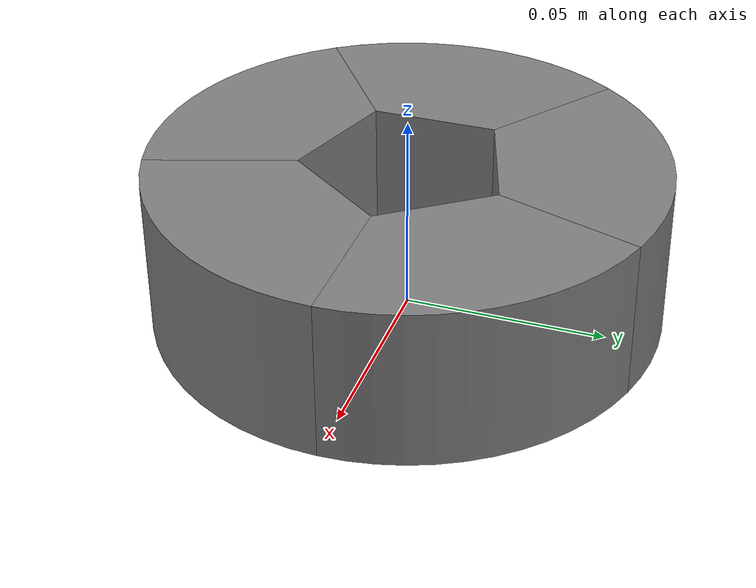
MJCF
<mujoco model="hole">
  <compiler angle="radian"/>
  <default>
    <default class="visual">
      <geom group="0" type="mesh" contype="0" conaffinity="0"/>
    </default>
  </default>
  <asset>
    <texture file="../textures/red-wood.png" type="cube" name="red-wood" />
    <material name="plate_mat" texture="red-wood" texrepeat="3 3" specular="0.4" shininess="0.1" />
    <mesh file="pentagon-hole/round_pentagon_hole_0.obj" name="round_pentagon_hole_0"/>
    <mesh file="pentagon-hole/round_pentagon_hole_1.obj" name="round_pentagon_hole_1"/>
    <mesh file="pentagon-hole/round_pentagon_hole_2.obj" name="round_pentagon_hole_2"/>
    <mesh file="pentagon-hole/round_pentagon_hole_3.obj" name="round_pentagon_hole_3"/>
    <mesh file="pentagon-hole/round_pentagon_hole_4.obj" name="round_pentagon_hole_4"/>

    <mesh file="pentagon-hole/pentagon_hole_0.obj" name="pentagon_hole_0"/>
    <mesh file="pentagon-hole/pentagon_hole_1.obj" name="pentagon_hole_1"/>
    <mesh file="pentagon-hole/pentagon_hole_2.obj" name="pentagon_hole_2"/>
    <mesh file="pentagon-hole/pentagon_hole_3.obj" name="pentagon_hole_3"/>
    <mesh file="pentagon-hole/pentagon_hole_4.obj" name="pentagon_hole_4"/>
    <mesh file="pentagon-hole/pentagon_hole_5.obj" name="pentagon_hole_5"/>
    <mesh file="pentagon-hole/pentagon_hole_6.obj" name="pentagon_hole_6"/>
    <mesh file="pentagon-hole/pentagon_hole_7.obj" name="pentagon_hole_7"/>
  </asset>

  <!-- Always initialize the free camera to point at the origin. -->
  <worldbody>
    <body>
      <body name="object">
        <site rgba="0 0 0 0" size="0.005" pos="0 0 0.0" name="center"/>
        <site pos="0 0 0" size="0.005 .1" quat="0.707105  0 0.707108 0 " rgba="1 0 0 0" type="cylinder" group="1"/>
        <site pos="0 0 0" size="0.005 .1" quat="0.707105 0.707108 0 0" rgba="0 1 0 0" type="cylinder" group="1"/>
        <site pos="0 0 0" size="0.005 .1" quat="1 0 0 0" rgba="0 0 1 0" type="cylinder" group="1"/>
        <geom mesh="round_pentagon_hole_0" type="mesh" group="0" solref=".004 1"/>
        <geom mesh="round_pentagon_hole_1" type="mesh" group="0" solref=".004 1"/>
        <geom mesh="round_pentagon_hole_2" type="mesh" group="0" solref=".004 1"/>
        <geom mesh="round_pentagon_hole_3" type="mesh" group="0" solref=".004 1"/>
        <geom mesh="round_pentagon_hole_4" type="mesh" group="0" solref=".004 1"/>
      </body>
    </body>
  </worldbody>
</mujoco>
